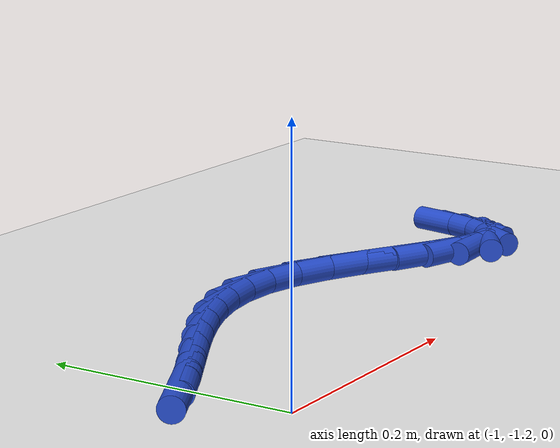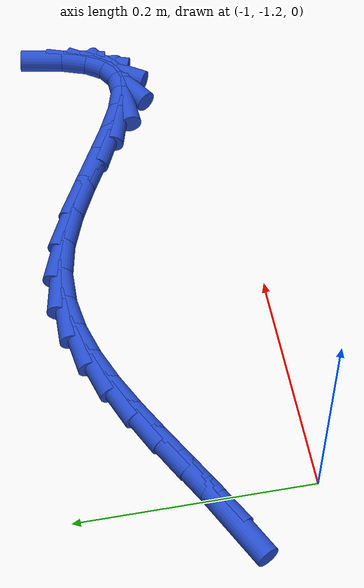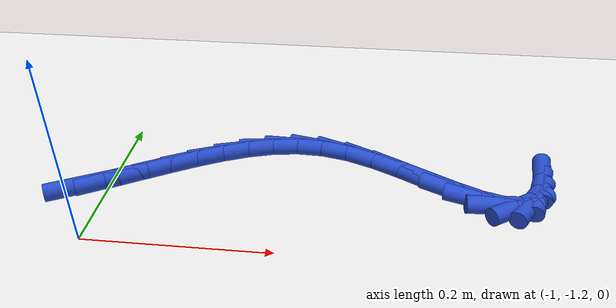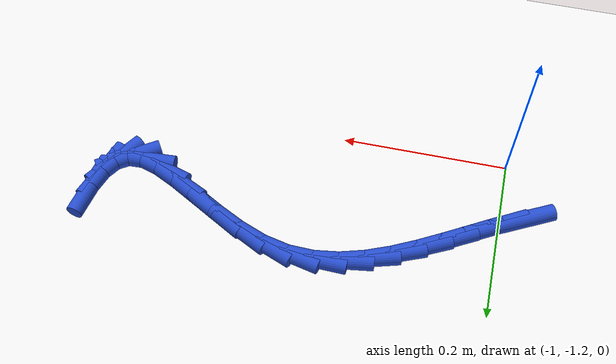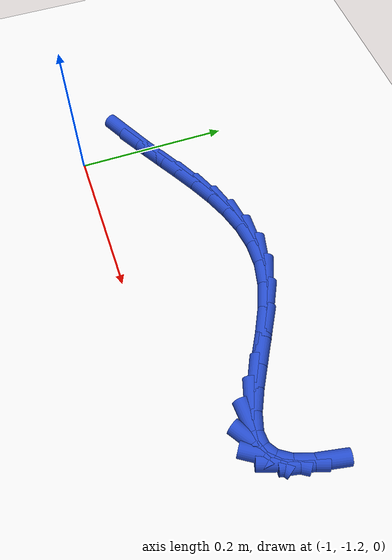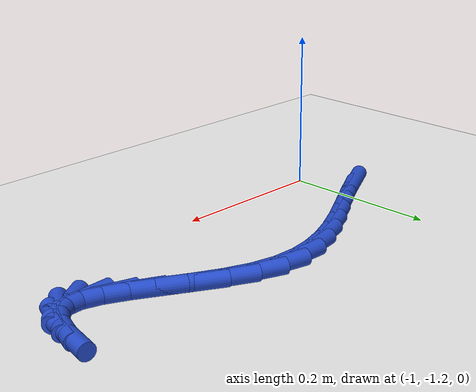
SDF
<sdf version="1.6">
 <world name="default">
  <model name="ground_plane">
   <static>1</static>
   <link name="link">
    <collision name="collision">
     <geometry><plane><normal>0 0 1</normal><size>100 100</size></plane></geometry>
     <surface><friction><ode><mu>100</mu><mu2>50</mu2></ode></friction></surface>
    </collision>
    <visual name="visual">
     <cast_shadows>0</cast_shadows>
     <geometry><plane><normal>0 0 1</normal><size>100 100</size></plane></geometry>
     <material>
      <script><uri>file://media/materials/scripts/gazebo.material</uri><name>Gazebo/WhiteGlow</name></script>
     </material>
    </visual>
   </link>
  </model>
  <model name="line">
   <link name="link_190">
    <pose>-1.024995132505692 -1.1266360080999063 0.01 0 1.57 0.4752835231513328</pose>
    <collision name="collision">
     <geometry><cylinder><radius>0.01</radius><length>0.08</length></cylinder></geometry>
    </collision>
    <visual name="visual">
     <material>
      <script><name>Gazebo/Blue</name><uri>file://media/materials/scripts/gazebo.material</uri></script>
     </material>
     <geometry><cylinder><radius>0.01</radius><length>0.08</length></cylinder></geometry>
    </visual>
   </link>
   <link name="link_191">
    <pose>-0.996745982839338 -1.1120981291776495 0.01 0 1.57 0.5117454096386737</pose>
    <collision name="collision">
     <geometry><cylinder><radius>0.01</radius><length>0.08</length></cylinder></geometry>
    </collision>
    <visual name="visual">
     <material>
      <script><name>Gazebo/Blue</name><uri>file://media/materials/scripts/gazebo.material</uri></script>
     </material>
     <geometry><cylinder><radius>0.01</radius><length>0.08</length></cylinder></geometry>
    </visual>
   </link>
   <link name="link_192">
    <pose>-0.9686354166360944 -1.0963097601073866 0.01 0 1.57 0.5213914592260263</pose>
    <collision name="collision">
     <geometry><cylinder><radius>0.01</radius><length>0.08</length></cylinder></geometry>
    </collision>
    <visual name="visual">
     <material>
      <script><name>Gazebo/Blue</name><uri>file://media/materials/scripts/gazebo.material</uri></script>
     </material>
     <geometry><cylinder><radius>0.01</radius><length>0.08</length></cylinder></geometry>
    </visual>
   </link>
   <link name="link_193">
    <pose>-0.9405531077875133 -1.0801789751951691 0.01 0 1.57 0.5048777449678686</pose>
    <collision name="collision">
     <geometry><cylinder><radius>0.01</radius><length>0.08</length></cylinder></geometry>
    </collision>
    <visual name="visual">
     <material>
      <script><name>Gazebo/Blue</name><uri>file://media/materials/scripts/gazebo.material</uri></script>
     </material>
     <geometry><cylinder><radius>0.01</radius><length>0.08</length></cylinder></geometry>
    </visual>
   </link>
   <link name="link_194">
    <pose>-0.9123887301851485 -1.064613848747048 0.01 0 1.57 0.4611903685611498</pose>
    <collision name="collision">
     <geometry><cylinder><radius>0.01</radius><length>0.08</length></cylinder></geometry>
    </collision>
    <visual name="visual">
     <material>
      <script><name>Gazebo/Blue</name><uri>file://media/materials/scripts/gazebo.material</uri></script>
     </material>
     <geometry><cylinder><radius>0.01</radius><length>0.08</length></cylinder></geometry>
    </visual>
   </link>
   <link name="link_195">
    <pose>-0.8840319577205524 -1.0505224550690744 0.01 0 1.57 0.3878777101511635</pose>
    <collision name="collision">
     <geometry><cylinder><radius>0.01</radius><length>0.08</length></cylinder></geometry>
    </collision>
    <visual name="visual">
     <material>
      <script><name>Gazebo/Blue</name><uri>file://media/materials/scripts/gazebo.material</uri></script>
     </material>
     <geometry><cylinder><radius>0.01</radius><length>0.08</length></cylinder></geometry>
    </visual>
   </link>
   <link name="link_196">
    <pose>-0.8553724642852768 -1.0388128684672984 0.01 0 1.57 0.2818978536162542</pose>
    <collision name="collision">
     <geometry><cylinder><radius>0.01</radius><length>0.08</length></cylinder></geometry>
    </collision>
    <visual name="visual">
     <material>
      <script><name>Gazebo/Blue</name><uri>file://media/materials/scripts/gazebo.material</uri></script>
     </material>
     <geometry><cylinder><radius>0.01</radius><length>0.08</length></cylinder></geometry>
    </visual>
   </link>
   <link name="link_197">
    <pose>-0.8262999237708758 -1.0303931632477725 0.01 0 1.57 0.1416904869660419</pose>
    <collision name="collision">
     <geometry><cylinder><radius>0.01</radius><length>0.08</length></cylinder></geometry>
    </collision>
    <visual name="visual">
     <material>
      <script><name>Gazebo/Blue</name><uri>file://media/materials/scripts/gazebo.material</uri></script>
     </material>
     <geometry><cylinder><radius>0.01</radius><length>0.08</length></cylinder></geometry>
    </visual>
   </link>
   <link name="link_198">
    <pose>-0.7967040100689013 -1.0261714137165463 0.01 0 1.57 -0.029243787216014363</pose>
    <collision name="collision">
     <geometry><cylinder><radius>0.01</radius><length>0.08</length></cylinder></geometry>
    </collision>
    <visual name="visual">
     <material>
      <script><name>Gazebo/Blue</name><uri>file://media/materials/scripts/gazebo.material</uri></script>
     </material>
     <geometry><cylinder><radius>0.01</radius><length>0.08</length></cylinder></geometry>
    </visual>
   </link>
   <link name="link_199">
    <pose>-0.7664743970709064 -1.0270556941796711 0.01 0 1.57 -0.21807221864505824</pose>
    <collision name="collision">
     <geometry><cylinder><radius>0.01</radius><length>0.08</length></cylinder></geometry>
    </collision>
    <visual name="visual">
     <material>
      <script><name>Gazebo/Blue</name><uri>file://media/materials/scripts/gazebo.material</uri></script>
     </material>
     <geometry><cylinder><radius>0.01</radius><length>0.08</length></cylinder></geometry>
    </visual>
   </link>
   <link name="link_200">
    <pose>-0.7355112366482529 -1.0339170100805934 0.01 0 1.57 -0.375190013973272</pose>
    <collision name="collision">
     <geometry><cylinder><radius>0.01</radius><length>0.08</length></cylinder></geometry>
    </collision>
    <visual name="visual">
     <material>
      <script><name>Gazebo/Blue</name><uri>file://media/materials/scripts/gazebo.material</uri></script>
     </material>
     <geometry><cylinder><radius>0.01</radius><length>0.08</length></cylinder></geometry>
    </visual>
   </link>
   <link name="link_201">
    <pose>-0.7040920442551881 -1.0462913348183371 0.01 0 1.57 -0.46841516227916696</pose>
    <collision name="collision">
     <geometry><cylinder><radius>0.01</radius><length>0.08</length></cylinder></geometry>
    </collision>
    <visual name="visual">
     <material>
      <script><name>Gazebo/Blue</name><uri>file://media/materials/scripts/gazebo.material</uri></script>
     </material>
     <geometry><cylinder><radius>0.01</radius><length>0.08</length></cylinder></geometry>
    </visual>
   </link>
   <link name="link_202">
    <pose>-0.672967879137321 -1.0620393446393235 0.01 0 1.57 -0.5117348930147817</pose>
    <collision name="collision">
     <geometry><cylinder><radius>0.01</radius><length>0.08</length></cylinder></geometry>
    </collision>
    <visual name="visual">
     <material>
      <script><name>Gazebo/Blue</name><uri>file://media/materials/scripts/gazebo.material</uri></script>
     </material>
     <geometry><cylinder><radius>0.01</radius><length>0.08</length></cylinder></geometry>
    </visual>
   </link>
   <link name="link_203">
    <pose>-0.6429198259157108 -1.0789154924017328 0.01 0 1.57 -0.5097280729216207</pose>
    <collision name="collision">
     <geometry><cylinder><radius>0.01</radius><length>0.08</length></cylinder></geometry>
    </collision>
    <visual name="visual">
     <material>
      <script><name>Gazebo/Blue</name><uri>file://media/materials/scripts/gazebo.material</uri></script>
     </material>
     <geometry><cylinder><radius>0.01</radius><length>0.08</length></cylinder></geometry>
    </visual>
   </link>
   <link name="link_204">
    <pose>-0.6147289692114172 -1.0946742309637458 0.01 0 1.57 -0.45166393165021407</pose>
    <collision name="collision">
     <geometry><cylinder><radius>0.01</radius><length>0.08</length></cylinder></geometry>
    </collision>
    <visual name="visual">
     <material>
      <script><name>Gazebo/Blue</name><uri>file://media/materials/scripts/gazebo.material</uri></script>
     </material>
     <geometry><cylinder><radius>0.01</radius><length>0.08</length></cylinder></geometry>
    </visual>
   </link>
   <link name="link_205">
    <pose>-0.5891763936454993 -1.1070700131835427 0.01 0 1.57 -0.29755185722763733</pose>
    <collision name="collision">
     <geometry><cylinder><radius>0.01</radius><length>0.08</length></cylinder></geometry>
    </collision>
    <visual name="visual">
     <material>
      <script><name>Gazebo/Blue</name><uri>file://media/materials/scripts/gazebo.material</uri></script>
     </material>
     <geometry><cylinder><radius>0.01</radius><length>0.08</length></cylinder></geometry>
    </visual>
   </link>
   <link name="link_206">
    <pose>-0.5670431838390173 -1.1138572919193048 0.01 0 1.57 0.051853921693248636</pose>
    <collision name="collision">
     <geometry><cylinder><radius>0.01</radius><length>0.08</length></cylinder></geometry>
    </collision>
    <visual name="visual">
     <material>
      <script><name>Gazebo/Blue</name><uri>file://media/materials/scripts/gazebo.material</uri></script>
     </material>
     <geometry><cylinder><radius>0.01</radius><length>0.08</length></cylinder></geometry>
    </visual>
   </link>
   <link name="link_207">
    <pose>-0.5490524041846958 -1.1129235624101341 0.01 0 1.57 0.5743499958389795</pose>
    <collision name="collision">
     <geometry><cylinder><radius>0.01</radius><length>0.08</length></cylinder></geometry>
    </collision>
    <visual name="visual">
     <material>
      <script><name>Gazebo/Blue</name><uri>file://media/materials/scripts/gazebo.material</uri></script>
     </material>
     <geometry><cylinder><radius>0.01</radius><length>0.08</length></cylinder></geometry>
    </visual>
   </link>
   <link name="link_208">
    <pose>-0.5351538373482047 -1.1039294815155756 0.01 0 1.57 0.9978767457233388</pose>
    <collision name="collision">
     <geometry><cylinder><radius>0.01</radius><length>0.08</length></cylinder></geometry>
    </collision>
    <visual name="visual">
     <material>
      <script><name>Gazebo/Blue</name><uri>file://media/materials/scripts/gazebo.material</uri></script>
     </material>
     <geometry><cylinder><radius>0.01</radius><length>0.08</length></cylinder></geometry>
    </visual>
   </link>
   <link name="link_209">
    <pose>-0.5247470650963898 -1.0877973356968977 0.01 0 1.57 1.2455472982132174</pose>
    <collision name="collision">
     <geometry><cylinder><radius>0.01</radius><length>0.08</length></cylinder></geometry>
    </collision>
    <visual name="visual">
     <material>
      <script><name>Gazebo/Blue</name><uri>file://media/materials/scripts/gazebo.material</uri></script>
     </material>
     <geometry><cylinder><radius>0.01</radius><length>0.08</length></cylinder></geometry>
    </visual>
   </link>
   <link name="link_210">
    <pose>-0.5172198916923926 -1.0654764176368037 0.01 0 1.57 1.3822187310877265</pose>
    <collision name="collision">
     <geometry><cylinder><radius>0.01</radius><length>0.08</length></cylinder></geometry>
    </collision>
    <visual name="visual">
     <material>
      <script><name>Gazebo/Blue</name><uri>file://media/materials/scripts/gazebo.material</uri></script>
     </material>
     <geometry><cylinder><radius>0.01</radius><length>0.08</length></cylinder></geometry>
    </visual>
   </link>
  </model>
 </world>
</sdf>
